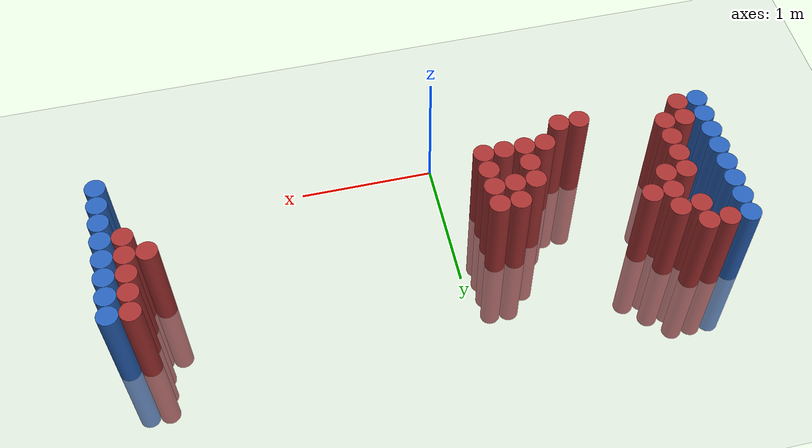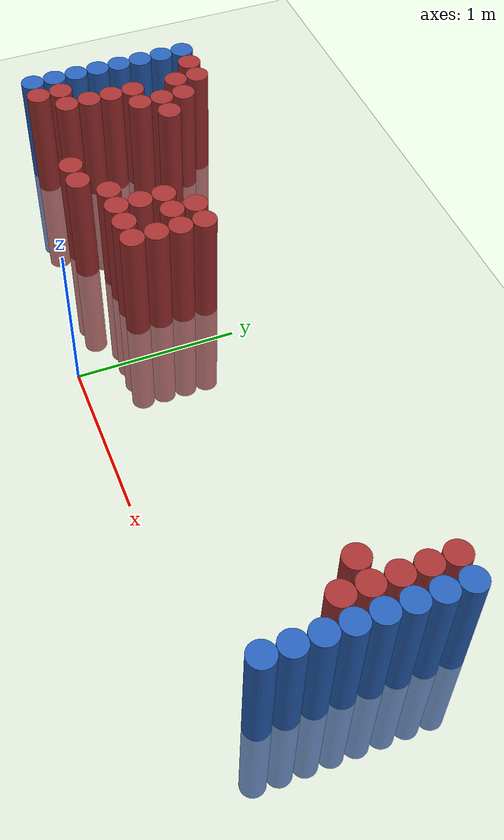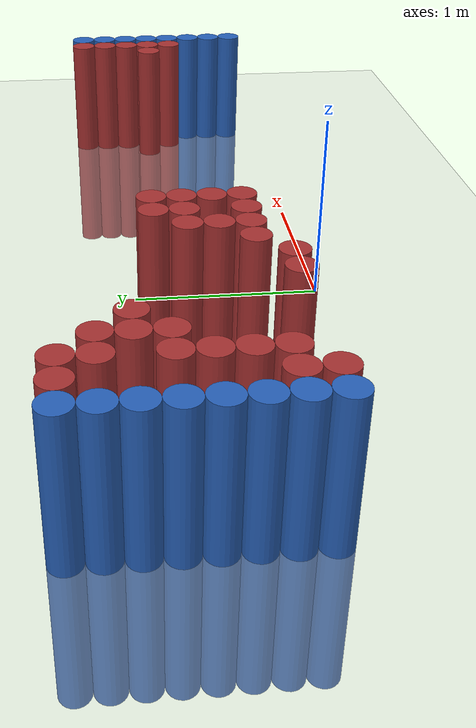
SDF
<sdf version="1.6">
 <world name="default">
  <model name="ground_plane">
   <static>1</static>
   <link name="link">
    <collision name="collision">
     <geometry><plane><normal>0 0 1</normal><size>100 100</size></plane></geometry>
     <surface><friction><ode><mu>100</mu><mu2>50</mu2></ode></friction></surface>
    </collision>
    <visual name="visual">
     <cast_shadows>0</cast_shadows>
     <geometry><plane><normal>0 0 1</normal><size>100 100</size></plane></geometry>
     <material>
      <script><uri>file://media/materials/scripts/gazebo.material</uri><name>Gazebo/Grey</name></script>
     </material>
    </visual>
   </link>
  </model>
  <model name="unit_cylinder_97">
   <static>1</static>
   <pose>-1.925000 0.325000 0.000000 0.000000 0.000000 0.000000</pose>
   <link name="link">
    <inertial>
     <mass>1</mass>
     <inertia><ixx>0.145833</ixx><ixy>0</ixy><ixz>0</ixz><iyy>0.145833</iyy><iyz>0</iyz><izz>0.125</izz></inertia>
    </inertial>
    <collision name="collision">
     <geometry><cylinder><radius>0.075000</radius><length>1.5</length></cylinder></geometry>
    </collision>
    <visual name="visual">
     <geometry><cylinder><radius>0.075000</radius><length>1.5</length></cylinder></geometry>
     <material>
      <ambient>0.152000 0.379000 0.720000 1</ambient>
      <diffuse>0.152000 0.379000 0.720000 1</diffuse>
     </material>
     <material>
      <script><name>Gazebo/Grey</name><uri>file://media/materials/scripts/gazebo.material</uri></script>
     </material>
    </visual>
   </link>
  </model>
  <model name="unit_cylinder_98">
   <static>1</static>
   <pose>-1.925000 0.475000 0.000000 0.000000 0.000000 0.000000</pose>
   <link name="link">
    <inertial>
     <mass>1</mass>
     <inertia><ixx>0.145833</ixx><ixy>0</ixy><ixz>0</ixz><iyy>0.145833</iyy><iyz>0</iyz><izz>0.125</izz></inertia>
    </inertial>
    <collision name="collision">
     <geometry><cylinder><radius>0.075000</radius><length>1.5</length></cylinder></geometry>
    </collision>
    <visual name="visual">
     <geometry><cylinder><radius>0.075000</radius><length>1.5</length></cylinder></geometry>
     <material>
      <ambient>0.152000 0.379000 0.720000 1</ambient>
      <diffuse>0.152000 0.379000 0.720000 1</diffuse>
     </material>
     <material>
      <script><name>Gazebo/Grey</name><uri>file://media/materials/scripts/gazebo.material</uri></script>
     </material>
    </visual>
   </link>
  </model>
  <model name="unit_cylinder_99">
   <static>1</static>
   <pose>-1.925000 0.625000 0.000000 0.000000 0.000000 0.000000</pose>
   <link name="link">
    <inertial>
     <mass>1</mass>
     <inertia><ixx>0.145833</ixx><ixy>0</ixy><ixz>0</ixz><iyy>0.145833</iyy><iyz>0</iyz><izz>0.125</izz></inertia>
    </inertial>
    <collision name="collision">
     <geometry><cylinder><radius>0.075000</radius><length>1.5</length></cylinder></geometry>
    </collision>
    <visual name="visual">
     <geometry><cylinder><radius>0.075000</radius><length>1.5</length></cylinder></geometry>
     <material>
      <ambient>0.152000 0.379000 0.720000 1</ambient>
      <diffuse>0.152000 0.379000 0.720000 1</diffuse>
     </material>
     <material>
      <script><name>Gazebo/Grey</name><uri>file://media/materials/scripts/gazebo.material</uri></script>
     </material>
    </visual>
   </link>
  </model>
  <model name="unit_cylinder_100">
   <static>1</static>
   <pose>-1.925000 0.775000 0.000000 0.000000 0.000000 0.000000</pose>
   <link name="link">
    <inertial>
     <mass>1</mass>
     <inertia><ixx>0.145833</ixx><ixy>0</ixy><ixz>0</ixz><iyy>0.145833</iyy><iyz>0</iyz><izz>0.125</izz></inertia>
    </inertial>
    <collision name="collision">
     <geometry><cylinder><radius>0.075000</radius><length>1.5</length></cylinder></geometry>
    </collision>
    <visual name="visual">
     <geometry><cylinder><radius>0.075000</radius><length>1.5</length></cylinder></geometry>
     <material>
      <ambient>0.152000 0.379000 0.720000 1</ambient>
      <diffuse>0.152000 0.379000 0.720000 1</diffuse>
     </material>
     <material>
      <script><name>Gazebo/Grey</name><uri>file://media/materials/scripts/gazebo.material</uri></script>
     </material>
    </visual>
   </link>
  </model>
  <model name="unit_cylinder_101">
   <static>1</static>
   <pose>-1.925000 0.925000 0.000000 0.000000 0.000000 0.000000</pose>
   <link name="link">
    <inertial>
     <mass>1</mass>
     <inertia><ixx>0.145833</ixx><ixy>0</ixy><ixz>0</ixz><iyy>0.145833</iyy><iyz>0</iyz><izz>0.125</izz></inertia>
    </inertial>
    <collision name="collision">
     <geometry><cylinder><radius>0.075000</radius><length>1.5</length></cylinder></geometry>
    </collision>
    <visual name="visual">
     <geometry><cylinder><radius>0.075000</radius><length>1.5</length></cylinder></geometry>
     <material>
      <ambient>0.152000 0.379000 0.720000 1</ambient>
      <diffuse>0.152000 0.379000 0.720000 1</diffuse>
     </material>
     <material>
      <script><name>Gazebo/Grey</name><uri>file://media/materials/scripts/gazebo.material</uri></script>
     </material>
    </visual>
   </link>
  </model>
  <model name="unit_cylinder_102">
   <static>1</static>
   <pose>-1.925000 1.075000 0.000000 0.000000 0.000000 0.000000</pose>
   <link name="link">
    <inertial>
     <mass>1</mass>
     <inertia><ixx>0.145833</ixx><ixy>0</ixy><ixz>0</ixz><iyy>0.145833</iyy><iyz>0</iyz><izz>0.125</izz></inertia>
    </inertial>
    <collision name="collision">
     <geometry><cylinder><radius>0.075000</radius><length>1.5</length></cylinder></geometry>
    </collision>
    <visual name="visual">
     <geometry><cylinder><radius>0.075000</radius><length>1.5</length></cylinder></geometry>
     <material>
      <ambient>0.152000 0.379000 0.720000 1</ambient>
      <diffuse>0.152000 0.379000 0.720000 1</diffuse>
     </material>
     <material>
      <script><name>Gazebo/Grey</name><uri>file://media/materials/scripts/gazebo.material</uri></script>
     </material>
    </visual>
   </link>
  </model>
  <model name="unit_cylinder_103">
   <static>1</static>
   <pose>-1.925000 1.225000 0.000000 0.000000 0.000000 0.000000</pose>
   <link name="link">
    <inertial>
     <mass>1</mass>
     <inertia><ixx>0.145833</ixx><ixy>0</ixy><ixz>0</ixz><iyy>0.145833</iyy><iyz>0</iyz><izz>0.125</izz></inertia>
    </inertial>
    <collision name="collision">
     <geometry><cylinder><radius>0.075000</radius><length>1.5</length></cylinder></geometry>
    </collision>
    <visual name="visual">
     <geometry><cylinder><radius>0.075000</radius><length>1.5</length></cylinder></geometry>
     <material>
      <ambient>0.152000 0.379000 0.720000 1</ambient>
      <diffuse>0.152000 0.379000 0.720000 1</diffuse>
     </material>
     <material>
      <script><name>Gazebo/Grey</name><uri>file://media/materials/scripts/gazebo.material</uri></script>
     </material>
    </visual>
   </link>
  </model>
  <model name="unit_cylinder_104">
   <static>1</static>
   <pose>-1.925000 1.375000 0.000000 0.000000 0.000000 0.000000</pose>
   <link name="link">
    <inertial>
     <mass>1</mass>
     <inertia><ixx>0.145833</ixx><ixy>0</ixy><ixz>0</ixz><iyy>0.145833</iyy><iyz>0</iyz><izz>0.125</izz></inertia>
    </inertial>
    <collision name="collision">
     <geometry><cylinder><radius>0.075000</radius><length>1.5</length></cylinder></geometry>
    </collision>
    <visual name="visual">
     <geometry><cylinder><radius>0.075000</radius><length>1.5</length></cylinder></geometry>
     <material>
      <ambient>0.152000 0.379000 0.720000 1</ambient>
      <diffuse>0.152000 0.379000 0.720000 1</diffuse>
     </material>
     <material>
      <script><name>Gazebo/Grey</name><uri>file://media/materials/scripts/gazebo.material</uri></script>
     </material>
    </visual>
   </link>
  </model>
  <model name="unit_cylinder_126">
   <static>1</static>
   <pose>-1.775000 0.325000 0.000000 0.000000 0.000000 0.000000</pose>
   <link name="link">
    <inertial>
     <mass>1</mass>
     <inertia><ixx>0.145833</ixx><ixy>0</ixy><ixz>0</ixz><iyy>0.145833</iyy><iyz>0</iyz><izz>0.125</izz></inertia>
    </inertial>
    <collision name="collision">
     <geometry><cylinder><radius>0.075000</radius><length>1.5</length></cylinder></geometry>
    </collision>
    <visual name="visual">
     <geometry><cylinder><radius>0.075000</radius><length>1.5</length></cylinder></geometry>
     <material>
      <ambient>0.648000 0.192000 0.192000 1</ambient>
      <diffuse>0.648000 0.192000 0.192000 1</diffuse>
     </material>
     <material>
      <script><name>Gazebo/Grey</name><uri>file://media/materials/scripts/gazebo.material</uri></script>
     </material>
    </visual>
   </link>
  </model>
  <model name="unit_cylinder_127">
   <static>1</static>
   <pose>-1.775000 0.475000 0.000000 0.000000 0.000000 0.000000</pose>
   <link name="link">
    <inertial>
     <mass>1</mass>
     <inertia><ixx>0.145833</ixx><ixy>0</ixy><ixz>0</ixz><iyy>0.145833</iyy><iyz>0</iyz><izz>0.125</izz></inertia>
    </inertial>
    <collision name="collision">
     <geometry><cylinder><radius>0.075000</radius><length>1.5</length></cylinder></geometry>
    </collision>
    <visual name="visual">
     <geometry><cylinder><radius>0.075000</radius><length>1.5</length></cylinder></geometry>
     <material>
      <ambient>0.648000 0.192000 0.192000 1</ambient>
      <diffuse>0.648000 0.192000 0.192000 1</diffuse>
     </material>
     <material>
      <script><name>Gazebo/Grey</name><uri>file://media/materials/scripts/gazebo.material</uri></script>
     </material>
    </visual>
   </link>
  </model>
  <model name="unit_cylinder_128">
   <static>1</static>
   <pose>-1.775000 1.375000 0.000000 0.000000 0.000000 0.000000</pose>
   <link name="link">
    <inertial>
     <mass>1</mass>
     <inertia><ixx>0.145833</ixx><ixy>0</ixy><ixz>0</ixz><iyy>0.145833</iyy><iyz>0</iyz><izz>0.125</izz></inertia>
    </inertial>
    <collision name="collision">
     <geometry><cylinder><radius>0.075000</radius><length>1.5</length></cylinder></geometry>
    </collision>
    <visual name="visual">
     <geometry><cylinder><radius>0.075000</radius><length>1.5</length></cylinder></geometry>
     <material>
      <ambient>0.648000 0.192000 0.192000 1</ambient>
      <diffuse>0.648000 0.192000 0.192000 1</diffuse>
     </material>
     <material>
      <script><name>Gazebo/Grey</name><uri>file://media/materials/scripts/gazebo.material</uri></script>
     </material>
    </visual>
   </link>
  </model>
  <model name="unit_cylinder_141">
   <static>1</static>
   <pose>-1.625000 0.475000 0.000000 0.000000 0.000000 0.000000</pose>
   <link name="link">
    <inertial>
     <mass>1</mass>
     <inertia><ixx>0.145833</ixx><ixy>0</ixy><ixz>0</ixz><iyy>0.145833</iyy><iyz>0</iyz><izz>0.125</izz></inertia>
    </inertial>
    <collision name="collision">
     <geometry><cylinder><radius>0.075000</radius><length>1.5</length></cylinder></geometry>
    </collision>
    <visual name="visual">
     <geometry><cylinder><radius>0.075000</radius><length>1.5</length></cylinder></geometry>
     <material>
      <ambient>0.648000 0.192000 0.192000 1</ambient>
      <diffuse>0.648000 0.192000 0.192000 1</diffuse>
     </material>
     <material>
      <script><name>Gazebo/Grey</name><uri>file://media/materials/scripts/gazebo.material</uri></script>
     </material>
    </visual>
   </link>
  </model>
  <model name="unit_cylinder_142">
   <static>1</static>
   <pose>-1.625000 0.625000 0.000000 0.000000 0.000000 0.000000</pose>
   <link name="link">
    <inertial>
     <mass>1</mass>
     <inertia><ixx>0.145833</ixx><ixy>0</ixy><ixz>0</ixz><iyy>0.145833</iyy><iyz>0</iyz><izz>0.125</izz></inertia>
    </inertial>
    <collision name="collision">
     <geometry><cylinder><radius>0.075000</radius><length>1.5</length></cylinder></geometry>
    </collision>
    <visual name="visual">
     <geometry><cylinder><radius>0.075000</radius><length>1.5</length></cylinder></geometry>
     <material>
      <ambient>0.648000 0.192000 0.192000 1</ambient>
      <diffuse>0.648000 0.192000 0.192000 1</diffuse>
     </material>
     <material>
      <script><name>Gazebo/Grey</name><uri>file://media/materials/scripts/gazebo.material</uri></script>
     </material>
    </visual>
   </link>
  </model>
  <model name="unit_cylinder_143">
   <static>1</static>
   <pose>-1.625000 0.775000 0.000000 0.000000 0.000000 0.000000</pose>
   <link name="link">
    <inertial>
     <mass>1</mass>
     <inertia><ixx>0.145833</ixx><ixy>0</ixy><ixz>0</ixz><iyy>0.145833</iyy><iyz>0</iyz><izz>0.125</izz></inertia>
    </inertial>
    <collision name="collision">
     <geometry><cylinder><radius>0.075000</radius><length>1.5</length></cylinder></geometry>
    </collision>
    <visual name="visual">
     <geometry><cylinder><radius>0.075000</radius><length>1.5</length></cylinder></geometry>
     <material>
      <ambient>0.648000 0.192000 0.192000 1</ambient>
      <diffuse>0.648000 0.192000 0.192000 1</diffuse>
     </material>
     <material>
      <script><name>Gazebo/Grey</name><uri>file://media/materials/scripts/gazebo.material</uri></script>
     </material>
    </visual>
   </link>
  </model>
  <model name="unit_cylinder_144">
   <static>1</static>
   <pose>-1.625000 0.925000 0.000000 0.000000 0.000000 0.000000</pose>
   <link name="link">
    <inertial>
     <mass>1</mass>
     <inertia><ixx>0.145833</ixx><ixy>0</ixy><ixz>0</ixz><iyy>0.145833</iyy><iyz>0</iyz><izz>0.125</izz></inertia>
    </inertial>
    <collision name="collision">
     <geometry><cylinder><radius>0.075000</radius><length>1.5</length></cylinder></geometry>
    </collision>
    <visual name="visual">
     <geometry><cylinder><radius>0.075000</radius><length>1.5</length></cylinder></geometry>
     <material>
      <ambient>0.648000 0.192000 0.192000 1</ambient>
      <diffuse>0.648000 0.192000 0.192000 1</diffuse>
     </material>
     <material>
      <script><name>Gazebo/Grey</name><uri>file://media/materials/scripts/gazebo.material</uri></script>
     </material>
    </visual>
   </link>
  </model>
  <model name="unit_cylinder_145">
   <static>1</static>
   <pose>-1.625000 1.225000 0.000000 0.000000 0.000000 0.000000</pose>
   <link name="link">
    <inertial>
     <mass>1</mass>
     <inertia><ixx>0.145833</ixx><ixy>0</ixy><ixz>0</ixz><iyy>0.145833</iyy><iyz>0</iyz><izz>0.125</izz></inertia>
    </inertial>
    <collision name="collision">
     <geometry><cylinder><radius>0.075000</radius><length>1.5</length></cylinder></geometry>
    </collision>
    <visual name="visual">
     <geometry><cylinder><radius>0.075000</radius><length>1.5</length></cylinder></geometry>
     <material>
      <ambient>0.648000 0.192000 0.192000 1</ambient>
      <diffuse>0.648000 0.192000 0.192000 1</diffuse>
     </material>
     <material>
      <script><name>Gazebo/Grey</name><uri>file://media/materials/scripts/gazebo.material</uri></script>
     </material>
    </visual>
   </link>
  </model>
  <model name="unit_cylinder_146">
   <static>1</static>
   <pose>-1.625000 1.375000 0.000000 0.000000 0.000000 0.000000</pose>
   <link name="link">
    <inertial>
     <mass>1</mass>
     <inertia><ixx>0.145833</ixx><ixy>0</ixy><ixz>0</ixz><iyy>0.145833</iyy><iyz>0</iyz><izz>0.125</izz></inertia>
    </inertial>
    <collision name="collision">
     <geometry><cylinder><radius>0.075000</radius><length>1.5</length></cylinder></geometry>
    </collision>
    <visual name="visual">
     <geometry><cylinder><radius>0.075000</radius><length>1.5</length></cylinder></geometry>
     <material>
      <ambient>0.648000 0.192000 0.192000 1</ambient>
      <diffuse>0.648000 0.192000 0.192000 1</diffuse>
     </material>
     <material>
      <script><name>Gazebo/Grey</name><uri>file://media/materials/scripts/gazebo.material</uri></script>
     </material>
    </visual>
   </link>
  </model>
  <model name="unit_cylinder_147">
   <static>1</static>
   <pose>-1.475000 0.925000 0.000000 0.000000 0.000000 0.000000</pose>
   <link name="link">
    <inertial>
     <mass>1</mass>
     <inertia><ixx>0.145833</ixx><ixy>0</ixy><ixz>0</ixz><iyy>0.145833</iyy><iyz>0</iyz><izz>0.125</izz></inertia>
    </inertial>
    <collision name="collision">
     <geometry><cylinder><radius>0.075000</radius><length>1.5</length></cylinder></geometry>
    </collision>
    <visual name="visual">
     <geometry><cylinder><radius>0.075000</radius><length>1.5</length></cylinder></geometry>
     <material>
      <ambient>0.648000 0.192000 0.192000 1</ambient>
      <diffuse>0.648000 0.192000 0.192000 1</diffuse>
     </material>
     <material>
      <script><name>Gazebo/Grey</name><uri>file://media/materials/scripts/gazebo.material</uri></script>
     </material>
    </visual>
   </link>
  </model>
  <model name="unit_cylinder_148">
   <static>1</static>
   <pose>-1.475000 1.075000 0.000000 0.000000 0.000000 0.000000</pose>
   <link name="link">
    <inertial>
     <mass>1</mass>
     <inertia><ixx>0.145833</ixx><ixy>0</ixy><ixz>0</ixz><iyy>0.145833</iyy><iyz>0</iyz><izz>0.125</izz></inertia>
    </inertial>
    <collision name="collision">
     <geometry><cylinder><radius>0.075000</radius><length>1.5</length></cylinder></geometry>
    </collision>
    <visual name="visual">
     <geometry><cylinder><radius>0.075000</radius><length>1.5</length></cylinder></geometry>
     <material>
      <ambient>0.648000 0.192000 0.192000 1</ambient>
      <diffuse>0.648000 0.192000 0.192000 1</diffuse>
     </material>
     <material>
      <script><name>Gazebo/Grey</name><uri>file://media/materials/scripts/gazebo.material</uri></script>
     </material>
    </visual>
   </link>
  </model>
  <model name="unit_cylinder_149">
   <static>1</static>
   <pose>-1.475000 1.225000 0.000000 0.000000 0.000000 0.000000</pose>
   <link name="link">
    <inertial>
     <mass>1</mass>
     <inertia><ixx>0.145833</ixx><ixy>0</ixy><ixz>0</ixz><iyy>0.145833</iyy><iyz>0</iyz><izz>0.125</izz></inertia>
    </inertial>
    <collision name="collision">
     <geometry><cylinder><radius>0.075000</radius><length>1.5</length></cylinder></geometry>
    </collision>
    <visual name="visual">
     <geometry><cylinder><radius>0.075000</radius><length>1.5</length></cylinder></geometry>
     <material>
      <ambient>0.648000 0.192000 0.192000 1</ambient>
      <diffuse>0.648000 0.192000 0.192000 1</diffuse>
     </material>
     <material>
      <script><name>Gazebo/Grey</name><uri>file://media/materials/scripts/gazebo.material</uri></script>
     </material>
    </visual>
   </link>
  </model>
  <model name="unit_cylinder_151">
   <static>1</static>
   <pose>-1.325000 1.075000 0.000000 0.000000 0.000000 0.000000</pose>
   <link name="link">
    <inertial>
     <mass>1</mass>
     <inertia><ixx>0.145833</ixx><ixy>0</ixy><ixz>0</ixz><iyy>0.145833</iyy><iyz>0</iyz><izz>0.125</izz></inertia>
    </inertial>
    <collision name="collision">
     <geometry><cylinder><radius>0.075000</radius><length>1.5</length></cylinder></geometry>
    </collision>
    <visual name="visual">
     <geometry><cylinder><radius>0.075000</radius><length>1.5</length></cylinder></geometry>
     <material>
      <ambient>0.648000 0.192000 0.192000 1</ambient>
      <diffuse>0.648000 0.192000 0.192000 1</diffuse>
     </material>
     <material>
      <script><name>Gazebo/Grey</name><uri>file://media/materials/scripts/gazebo.material</uri></script>
     </material>
    </visual>
   </link>
  </model>
  <model name="unit_cylinder_164">
   <static>1</static>
   <pose>-1.025000 0.325000 0.000000 0.000000 0.000000 0.000000</pose>
   <link name="link">
    <inertial>
     <mass>1</mass>
     <inertia><ixx>0.145833</ixx><ixy>0</ixy><ixz>0</ixz><iyy>0.145833</iyy><iyz>0</iyz><izz>0.125</izz></inertia>
    </inertial>
    <collision name="collision">
     <geometry><cylinder><radius>0.075000</radius><length>1.5</length></cylinder></geometry>
    </collision>
    <visual name="visual">
     <geometry><cylinder><radius>0.075000</radius><length>1.5</length></cylinder></geometry>
     <material>
      <ambient>0.648000 0.192000 0.192000 1</ambient>
      <diffuse>0.648000 0.192000 0.192000 1</diffuse>
     </material>
     <material>
      <script><name>Gazebo/Grey</name><uri>file://media/materials/scripts/gazebo.material</uri></script>
     </material>
    </visual>
   </link>
  </model>
  <model name="unit_cylinder_171">
   <static>1</static>
   <pose>-0.875000 0.325000 0.000000 0.000000 0.000000 0.000000</pose>
   <link name="link">
    <inertial>
     <mass>1</mass>
     <inertia><ixx>0.145833</ixx><ixy>0</ixy><ixz>0</ixz><iyy>0.145833</iyy><iyz>0</iyz><izz>0.125</izz></inertia>
    </inertial>
    <collision name="collision">
     <geometry><cylinder><radius>0.075000</radius><length>1.5</length></cylinder></geometry>
    </collision>
    <visual name="visual">
     <geometry><cylinder><radius>0.075000</radius><length>1.5</length></cylinder></geometry>
     <material>
      <ambient>0.648000 0.192000 0.192000 1</ambient>
      <diffuse>0.648000 0.192000 0.192000 1</diffuse>
     </material>
     <material>
      <script><name>Gazebo/Grey</name><uri>file://media/materials/scripts/gazebo.material</uri></script>
     </material>
    </visual>
   </link>
  </model>
  <model name="unit_cylinder_176">
   <static>1</static>
   <pose>-0.725000 0.475000 0.000000 0.000000 0.000000 0.000000</pose>
   <link name="link">
    <inertial>
     <mass>1</mass>
     <inertia><ixx>0.145833</ixx><ixy>0</ixy><ixz>0</ixz><iyy>0.145833</iyy><iyz>0</iyz><izz>0.125</izz></inertia>
    </inertial>
    <collision name="collision">
     <geometry><cylinder><radius>0.075000</radius><length>1.5</length></cylinder></geometry>
    </collision>
    <visual name="visual">
     <geometry><cylinder><radius>0.075000</radius><length>1.5</length></cylinder></geometry>
     <material>
      <ambient>0.648000 0.192000 0.192000 1</ambient>
      <diffuse>0.648000 0.192000 0.192000 1</diffuse>
     </material>
     <material>
      <script><name>Gazebo/Grey</name><uri>file://media/materials/scripts/gazebo.material</uri></script>
     </material>
    </visual>
   </link>
  </model>
  <model name="unit_cylinder_180">
   <static>1</static>
   <pose>-0.575000 0.475000 0.000000 0.000000 0.000000 0.000000</pose>
   <link name="link">
    <inertial>
     <mass>1</mass>
     <inertia><ixx>0.145833</ixx><ixy>0</ixy><ixz>0</ixz><iyy>0.145833</iyy><iyz>0</iyz><izz>0.125</izz></inertia>
    </inertial>
    <collision name="collision">
     <geometry><cylinder><radius>0.075000</radius><length>1.5</length></cylinder></geometry>
    </collision>
    <visual name="visual">
     <geometry><cylinder><radius>0.075000</radius><length>1.5</length></cylinder></geometry>
     <material>
      <ambient>0.648000 0.192000 0.192000 1</ambient>
      <diffuse>0.648000 0.192000 0.192000 1</diffuse>
     </material>
     <material>
      <script><name>Gazebo/Grey</name><uri>file://media/materials/scripts/gazebo.material</uri></script>
     </material>
    </visual>
   </link>
  </model>
  <model name="unit_cylinder_181">
   <static>1</static>
   <pose>-0.575000 0.625000 0.000000 0.000000 0.000000 0.000000</pose>
   <link name="link">
    <inertial>
     <mass>1</mass>
     <inertia><ixx>0.145833</ixx><ixy>0</ixy><ixz>0</ixz><iyy>0.145833</iyy><iyz>0</iyz><izz>0.125</izz></inertia>
    </inertial>
    <collision name="collision">
     <geometry><cylinder><radius>0.075000</radius><length>1.5</length></cylinder></geometry>
    </collision>
    <visual name="visual">
     <geometry><cylinder><radius>0.075000</radius><length>1.5</length></cylinder></geometry>
     <material>
      <ambient>0.648000 0.192000 0.192000 1</ambient>
      <diffuse>0.648000 0.192000 0.192000 1</diffuse>
     </material>
     <material>
      <script><name>Gazebo/Grey</name><uri>file://media/materials/scripts/gazebo.material</uri></script>
     </material>
    </visual>
   </link>
  </model>
  <model name="unit_cylinder_182">
   <static>1</static>
   <pose>-0.575000 0.775000 0.000000 0.000000 0.000000 0.000000</pose>
   <link name="link">
    <inertial>
     <mass>1</mass>
     <inertia><ixx>0.145833</ixx><ixy>0</ixy><ixz>0</ixz><iyy>0.145833</iyy><iyz>0</iyz><izz>0.125</izz></inertia>
    </inertial>
    <collision name="collision">
     <geometry><cylinder><radius>0.075000</radius><length>1.5</length></cylinder></geometry>
    </collision>
    <visual name="visual">
     <geometry><cylinder><radius>0.075000</radius><length>1.5</length></cylinder></geometry>
     <material>
      <ambient>0.648000 0.192000 0.192000 1</ambient>
      <diffuse>0.648000 0.192000 0.192000 1</diffuse>
     </material>
     <material>
      <script><name>Gazebo/Grey</name><uri>file://media/materials/scripts/gazebo.material</uri></script>
     </material>
    </visual>
   </link>
  </model>
  <model name="unit_cylinder_186">
   <static>1</static>
   <pose>-0.425000 0.475000 0.000000 0.000000 0.000000 0.000000</pose>
   <link name="link">
    <inertial>
     <mass>1</mass>
     <inertia><ixx>0.145833</ixx><ixy>0</ixy><ixz>0</ixz><iyy>0.145833</iyy><iyz>0</iyz><izz>0.125</izz></inertia>
    </inertial>
    <collision name="collision">
     <geometry><cylinder><radius>0.075000</radius><length>1.5</length></cylinder></geometry>
    </collision>
    <visual name="visual">
     <geometry><cylinder><radius>0.075000</radius><length>1.5</length></cylinder></geometry>
     <material>
      <ambient>0.648000 0.192000 0.192000 1</ambient>
      <diffuse>0.648000 0.192000 0.192000 1</diffuse>
     </material>
     <material>
      <script><name>Gazebo/Grey</name><uri>file://media/materials/scripts/gazebo.material</uri></script>
     </material>
    </visual>
   </link>
  </model>
  <model name="unit_cylinder_187">
   <static>1</static>
   <pose>-0.425000 0.775000 0.000000 0.000000 0.000000 0.000000</pose>
   <link name="link">
    <inertial>
     <mass>1</mass>
     <inertia><ixx>0.145833</ixx><ixy>0</ixy><ixz>0</ixz><iyy>0.145833</iyy><iyz>0</iyz><izz>0.125</izz></inertia>
    </inertial>
    <collision name="collision">
     <geometry><cylinder><radius>0.075000</radius><length>1.5</length></cylinder></geometry>
    </collision>
    <visual name="visual">
     <geometry><cylinder><radius>0.075000</radius><length>1.5</length></cylinder></geometry>
     <material>
      <ambient>0.648000 0.192000 0.192000 1</ambient>
      <diffuse>0.648000 0.192000 0.192000 1</diffuse>
     </material>
     <material>
      <script><name>Gazebo/Grey</name><uri>file://media/materials/scripts/gazebo.material</uri></script>
     </material>
    </visual>
   </link>
  </model>
  <model name="unit_cylinder_188">
   <static>1</static>
   <pose>-0.425000 0.925000 0.000000 0.000000 0.000000 0.000000</pose>
   <link name="link">
    <inertial>
     <mass>1</mass>
     <inertia><ixx>0.145833</ixx><ixy>0</ixy><ixz>0</ixz><iyy>0.145833</iyy><iyz>0</iyz><izz>0.125</izz></inertia>
    </inertial>
    <collision name="collision">
     <geometry><cylinder><radius>0.075000</radius><length>1.5</length></cylinder></geometry>
    </collision>
    <visual name="visual">
     <geometry><cylinder><radius>0.075000</radius><length>1.5</length></cylinder></geometry>
     <material>
      <ambient>0.648000 0.192000 0.192000 1</ambient>
      <diffuse>0.648000 0.192000 0.192000 1</diffuse>
     </material>
     <material>
      <script><name>Gazebo/Grey</name><uri>file://media/materials/scripts/gazebo.material</uri></script>
     </material>
    </visual>
   </link>
  </model>
  <model name="unit_cylinder_191">
   <static>1</static>
   <pose>-0.275000 0.475000 0.000000 0.000000 0.000000 0.000000</pose>
   <link name="link">
    <inertial>
     <mass>1</mass>
     <inertia><ixx>0.145833</ixx><ixy>0</ixy><ixz>0</ixz><iyy>0.145833</iyy><iyz>0</iyz><izz>0.125</izz></inertia>
    </inertial>
    <collision name="collision">
     <geometry><cylinder><radius>0.075000</radius><length>1.5</length></cylinder></geometry>
    </collision>
    <visual name="visual">
     <geometry><cylinder><radius>0.075000</radius><length>1.5</length></cylinder></geometry>
     <material>
      <ambient>0.648000 0.192000 0.192000 1</ambient>
      <diffuse>0.648000 0.192000 0.192000 1</diffuse>
     </material>
     <material>
      <script><name>Gazebo/Grey</name><uri>file://media/materials/scripts/gazebo.material</uri></script>
     </material>
    </visual>
   </link>
  </model>
  <model name="unit_cylinder_192">
   <static>1</static>
   <pose>-0.275000 0.625000 0.000000 0.000000 0.000000 0.000000</pose>
   <link name="link">
    <inertial>
     <mass>1</mass>
     <inertia><ixx>0.145833</ixx><ixy>0</ixy><ixz>0</ixz><iyy>0.145833</iyy><iyz>0</iyz><izz>0.125</izz></inertia>
    </inertial>
    <collision name="collision">
     <geometry><cylinder><radius>0.075000</radius><length>1.5</length></cylinder></geometry>
    </collision>
    <visual name="visual">
     <geometry><cylinder><radius>0.075000</radius><length>1.5</length></cylinder></geometry>
     <material>
      <ambient>0.648000 0.192000 0.192000 1</ambient>
      <diffuse>0.648000 0.192000 0.192000 1</diffuse>
     </material>
     <material>
      <script><name>Gazebo/Grey</name><uri>file://media/materials/scripts/gazebo.material</uri></script>
     </material>
    </visual>
   </link>
  </model>
  <model name="unit_cylinder_193">
   <static>1</static>
   <pose>-0.275000 0.775000 0.000000 0.000000 0.000000 0.000000</pose>
   <link name="link">
    <inertial>
     <mass>1</mass>
     <inertia><ixx>0.145833</ixx><ixy>0</ixy><ixz>0</ixz><iyy>0.145833</iyy><iyz>0</iyz><izz>0.125</izz></inertia>
    </inertial>
    <collision name="collision">
     <geometry><cylinder><radius>0.075000</radius><length>1.5</length></cylinder></geometry>
    </collision>
    <visual name="visual">
     <geometry><cylinder><radius>0.075000</radius><length>1.5</length></cylinder></geometry>
     <material>
      <ambient>0.648000 0.192000 0.192000 1</ambient>
      <diffuse>0.648000 0.192000 0.192000 1</diffuse>
     </material>
     <material>
      <script><name>Gazebo/Grey</name><uri>file://media/materials/scripts/gazebo.material</uri></script>
     </material>
    </visual>
   </link>
  </model>
  <model name="unit_cylinder_194">
   <static>1</static>
   <pose>-0.275000 0.925000 0.000000 0.000000 0.000000 0.000000</pose>
   <link name="link">
    <inertial>
     <mass>1</mass>
     <inertia><ixx>0.145833</ixx><ixy>0</ixy><ixz>0</ixz><iyy>0.145833</iyy><iyz>0</iyz><izz>0.125</izz></inertia>
    </inertial>
    <collision name="collision">
     <geometry><cylinder><radius>0.075000</radius><length>1.5</length></cylinder></geometry>
    </collision>
    <visual name="visual">
     <geometry><cylinder><radius>0.075000</radius><length>1.5</length></cylinder></geometry>
     <material>
      <ambient>0.648000 0.192000 0.192000 1</ambient>
      <diffuse>0.648000 0.192000 0.192000 1</diffuse>
     </material>
     <material>
      <script><name>Gazebo/Grey</name><uri>file://media/materials/scripts/gazebo.material</uri></script>
     </material>
    </visual>
   </link>
  </model>
  <model name="unit_cylinder_236">
   <static>1</static>
   <pose>2.125000 0.775000 0.000000 0.000000 0.000000 0.000000</pose>
   <link name="link">
    <inertial>
     <mass>1</mass>
     <inertia><ixx>0.145833</ixx><ixy>0</ixy><ixz>0</ixz><iyy>0.145833</iyy><iyz>0</iyz><izz>0.125</izz></inertia>
    </inertial>
    <collision name="collision">
     <geometry><cylinder><radius>0.075000</radius><length>1.5</length></cylinder></geometry>
    </collision>
    <visual name="visual">
     <geometry><cylinder><radius>0.075000</radius><length>1.5</length></cylinder></geometry>
     <material>
      <ambient>0.648000 0.192000 0.192000 1</ambient>
      <diffuse>0.648000 0.192000 0.192000 1</diffuse>
     </material>
     <material>
      <script><name>Gazebo/Grey</name><uri>file://media/materials/scripts/gazebo.material</uri></script>
     </material>
    </visual>
   </link>
  </model>
  <model name="unit_cylinder_242">
   <static>1</static>
   <pose>2.275000 0.625000 0.000000 0.000000 0.000000 0.000000</pose>
   <link name="link">
    <inertial>
     <mass>1</mass>
     <inertia><ixx>0.145833</ixx><ixy>0</ixy><ixz>0</ixz><iyy>0.145833</iyy><iyz>0</iyz><izz>0.125</izz></inertia>
    </inertial>
    <collision name="collision">
     <geometry><cylinder><radius>0.075000</radius><length>1.5</length></cylinder></geometry>
    </collision>
    <visual name="visual">
     <geometry><cylinder><radius>0.075000</radius><length>1.5</length></cylinder></geometry>
     <material>
      <ambient>0.648000 0.192000 0.192000 1</ambient>
      <diffuse>0.648000 0.192000 0.192000 1</diffuse>
     </material>
     <material>
      <script><name>Gazebo/Grey</name><uri>file://media/materials/scripts/gazebo.material</uri></script>
     </material>
    </visual>
   </link>
  </model>
  <model name="unit_cylinder_243">
   <static>1</static>
   <pose>2.275000 0.775000 0.000000 0.000000 0.000000 0.000000</pose>
   <link name="link">
    <inertial>
     <mass>1</mass>
     <inertia><ixx>0.145833</ixx><ixy>0</ixy><ixz>0</ixz><iyy>0.145833</iyy><iyz>0</iyz><izz>0.125</izz></inertia>
    </inertial>
    <collision name="collision">
     <geometry><cylinder><radius>0.075000</radius><length>1.5</length></cylinder></geometry>
    </collision>
    <visual name="visual">
     <geometry><cylinder><radius>0.075000</radius><length>1.5</length></cylinder></geometry>
     <material>
      <ambient>0.648000 0.192000 0.192000 1</ambient>
      <diffuse>0.648000 0.192000 0.192000 1</diffuse>
     </material>
     <material>
      <script><name>Gazebo/Grey</name><uri>file://media/materials/scripts/gazebo.material</uri></script>
     </material>
    </visual>
   </link>
  </model>
  <model name="unit_cylinder_244">
   <static>1</static>
   <pose>2.275000 0.925000 0.000000 0.000000 0.000000 0.000000</pose>
   <link name="link">
    <inertial>
     <mass>1</mass>
     <inertia><ixx>0.145833</ixx><ixy>0</ixy><ixz>0</ixz><iyy>0.145833</iyy><iyz>0</iyz><izz>0.125</izz></inertia>
    </inertial>
    <collision name="collision">
     <geometry><cylinder><radius>0.075000</radius><length>1.5</length></cylinder></geometry>
    </collision>
    <visual name="visual">
     <geometry><cylinder><radius>0.075000</radius><length>1.5</length></cylinder></geometry>
     <material>
      <ambient>0.648000 0.192000 0.192000 1</ambient>
      <diffuse>0.648000 0.192000 0.192000 1</diffuse>
     </material>
     <material>
      <script><name>Gazebo/Grey</name><uri>file://media/materials/scripts/gazebo.material</uri></script>
     </material>
    </visual>
   </link>
  </model>
  <model name="unit_cylinder_245">
   <static>1</static>
   <pose>2.275000 1.075000 0.000000 0.000000 0.000000 0.000000</pose>
   <link name="link">
    <inertial>
     <mass>1</mass>
     <inertia><ixx>0.145833</ixx><ixy>0</ixy><ixz>0</ixz><iyy>0.145833</iyy><iyz>0</iyz><izz>0.125</izz></inertia>
    </inertial>
    <collision name="collision">
     <geometry><cylinder><radius>0.075000</radius><length>1.5</length></cylinder></geometry>
    </collision>
    <visual name="visual">
     <geometry><cylinder><radius>0.075000</radius><length>1.5</length></cylinder></geometry>
     <material>
      <ambient>0.648000 0.192000 0.192000 1</ambient>
      <diffuse>0.648000 0.192000 0.192000 1</diffuse>
     </material>
     <material>
      <script><name>Gazebo/Grey</name><uri>file://media/materials/scripts/gazebo.material</uri></script>
     </material>
    </visual>
   </link>
  </model>
  <model name="unit_cylinder_246">
   <static>1</static>
   <pose>2.275000 1.225000 0.000000 0.000000 0.000000 0.000000</pose>
   <link name="link">
    <inertial>
     <mass>1</mass>
     <inertia><ixx>0.145833</ixx><ixy>0</ixy><ixz>0</ixz><iyy>0.145833</iyy><iyz>0</iyz><izz>0.125</izz></inertia>
    </inertial>
    <collision name="collision">
     <geometry><cylinder><radius>0.075000</radius><length>1.5</length></cylinder></geometry>
    </collision>
    <visual name="visual">
     <geometry><cylinder><radius>0.075000</radius><length>1.5</length></cylinder></geometry>
     <material>
      <ambient>0.648000 0.192000 0.192000 1</ambient>
      <diffuse>0.648000 0.192000 0.192000 1</diffuse>
     </material>
     <material>
      <script><name>Gazebo/Grey</name><uri>file://media/materials/scripts/gazebo.material</uri></script>
     </material>
    </visual>
   </link>
  </model>
  <model name="unit_cylinder_262">
   <static>1</static>
   <pose>2.425000 0.175000 0.000000 0.000000 0.000000 0.000000</pose>
   <link name="link">
    <inertial>
     <mass>1</mass>
     <inertia><ixx>0.145833</ixx><ixy>0</ixy><ixz>0</ixz><iyy>0.145833</iyy><iyz>0</iyz><izz>0.125</izz></inertia>
    </inertial>
    <collision name="collision">
     <geometry><cylinder><radius>0.075000</radius><length>1.5</length></cylinder></geometry>
    </collision>
    <visual name="visual">
     <geometry><cylinder><radius>0.075000</radius><length>1.5</length></cylinder></geometry>
     <material>
      <ambient>0.152000 0.379000 0.720000 1</ambient>
      <diffuse>0.152000 0.379000 0.720000 1</diffuse>
     </material>
     <material>
      <script><name>Gazebo/Grey</name><uri>file://media/materials/scripts/gazebo.material</uri></script>
     </material>
    </visual>
   </link>
  </model>
  <model name="unit_cylinder_263">
   <static>1</static>
   <pose>2.425000 0.325000 0.000000 0.000000 0.000000 0.000000</pose>
   <link name="link">
    <inertial>
     <mass>1</mass>
     <inertia><ixx>0.145833</ixx><ixy>0</ixy><ixz>0</ixz><iyy>0.145833</iyy><iyz>0</iyz><izz>0.125</izz></inertia>
    </inertial>
    <collision name="collision">
     <geometry><cylinder><radius>0.075000</radius><length>1.5</length></cylinder></geometry>
    </collision>
    <visual name="visual">
     <geometry><cylinder><radius>0.075000</radius><length>1.5</length></cylinder></geometry>
     <material>
      <ambient>0.152000 0.379000 0.720000 1</ambient>
      <diffuse>0.152000 0.379000 0.720000 1</diffuse>
     </material>
     <material>
      <script><name>Gazebo/Grey</name><uri>file://media/materials/scripts/gazebo.material</uri></script>
     </material>
    </visual>
   </link>
  </model>
  <model name="unit_cylinder_264">
   <static>1</static>
   <pose>2.425000 0.475000 0.000000 0.000000 0.000000 0.000000</pose>
   <link name="link">
    <inertial>
     <mass>1</mass>
     <inertia><ixx>0.145833</ixx><ixy>0</ixy><ixz>0</ixz><iyy>0.145833</iyy><iyz>0</iyz><izz>0.125</izz></inertia>
    </inertial>
    <collision name="collision">
     <geometry><cylinder><radius>0.075000</radius><length>1.5</length></cylinder></geometry>
    </collision>
    <visual name="visual">
     <geometry><cylinder><radius>0.075000</radius><length>1.5</length></cylinder></geometry>
     <material>
      <ambient>0.152000 0.379000 0.720000 1</ambient>
      <diffuse>0.152000 0.379000 0.720000 1</diffuse>
     </material>
     <material>
      <script><name>Gazebo/Grey</name><uri>file://media/materials/scripts/gazebo.material</uri></script>
     </material>
    </visual>
   </link>
  </model>
  <model name="unit_cylinder_265">
   <static>1</static>
   <pose>2.425000 0.625000 0.000000 0.000000 0.000000 0.000000</pose>
   <link name="link">
    <inertial>
     <mass>1</mass>
     <inertia><ixx>0.145833</ixx><ixy>0</ixy><ixz>0</ixz><iyy>0.145833</iyy><iyz>0</iyz><izz>0.125</izz></inertia>
    </inertial>
    <collision name="collision">
     <geometry><cylinder><radius>0.075000</radius><length>1.5</length></cylinder></geometry>
    </collision>
    <visual name="visual">
     <geometry><cylinder><radius>0.075000</radius><length>1.5</length></cylinder></geometry>
     <material>
      <ambient>0.152000 0.379000 0.720000 1</ambient>
      <diffuse>0.152000 0.379000 0.720000 1</diffuse>
     </material>
     <material>
      <script><name>Gazebo/Grey</name><uri>file://media/materials/scripts/gazebo.material</uri></script>
     </material>
    </visual>
   </link>
  </model>
  <model name="unit_cylinder_266">
   <static>1</static>
   <pose>2.425000 0.775000 0.000000 0.000000 0.000000 0.000000</pose>
   <link name="link">
    <inertial>
     <mass>1</mass>
     <inertia><ixx>0.145833</ixx><ixy>0</ixy><ixz>0</ixz><iyy>0.145833</iyy><iyz>0</iyz><izz>0.125</izz></inertia>
    </inertial>
    <collision name="collision">
     <geometry><cylinder><radius>0.075000</radius><length>1.5</length></cylinder></geometry>
    </collision>
    <visual name="visual">
     <geometry><cylinder><radius>0.075000</radius><length>1.5</length></cylinder></geometry>
     <material>
      <ambient>0.152000 0.379000 0.720000 1</ambient>
      <diffuse>0.152000 0.379000 0.720000 1</diffuse>
     </material>
     <material>
      <script><name>Gazebo/Grey</name><uri>file://media/materials/scripts/gazebo.material</uri></script>
     </material>
    </visual>
   </link>
  </model>
  <model name="unit_cylinder_267">
   <static>1</static>
   <pose>2.425000 0.925000 0.000000 0.000000 0.000000 0.000000</pose>
   <link name="link">
    <inertial>
     <mass>1</mass>
     <inertia><ixx>0.145833</ixx><ixy>0</ixy><ixz>0</ixz><iyy>0.145833</iyy><iyz>0</iyz><izz>0.125</izz></inertia>
    </inertial>
    <collision name="collision">
     <geometry><cylinder><radius>0.075000</radius><length>1.5</length></cylinder></geometry>
    </collision>
    <visual name="visual">
     <geometry><cylinder><radius>0.075000</radius><length>1.5</length></cylinder></geometry>
     <material>
      <ambient>0.152000 0.379000 0.720000 1</ambient>
      <diffuse>0.152000 0.379000 0.720000 1</diffuse>
     </material>
     <material>
      <script><name>Gazebo/Grey</name><uri>file://media/materials/scripts/gazebo.material</uri></script>
     </material>
    </visual>
   </link>
  </model>
  <model name="unit_cylinder_268">
   <static>1</static>
   <pose>2.425000 1.075000 0.000000 0.000000 0.000000 0.000000</pose>
   <link name="link">
    <inertial>
     <mass>1</mass>
     <inertia><ixx>0.145833</ixx><ixy>0</ixy><ixz>0</ixz><iyy>0.145833</iyy><iyz>0</iyz><izz>0.125</izz></inertia>
    </inertial>
    <collision name="collision">
     <geometry><cylinder><radius>0.075000</radius><length>1.5</length></cylinder></geometry>
    </collision>
    <visual name="visual">
     <geometry><cylinder><radius>0.075000</radius><length>1.5</length></cylinder></geometry>
     <material>
      <ambient>0.152000 0.379000 0.720000 1</ambient>
      <diffuse>0.152000 0.379000 0.720000 1</diffuse>
     </material>
     <material>
      <script><name>Gazebo/Grey</name><uri>file://media/materials/scripts/gazebo.material</uri></script>
     </material>
    </visual>
   </link>
  </model>
  <model name="unit_cylinder_269">
   <static>1</static>
   <pose>2.425000 1.225000 0.000000 0.000000 0.000000 0.000000</pose>
   <link name="link">
    <inertial>
     <mass>1</mass>
     <inertia><ixx>0.145833</ixx><ixy>0</ixy><ixz>0</ixz><iyy>0.145833</iyy><iyz>0</iyz><izz>0.125</izz></inertia>
    </inertial>
    <collision name="collision">
     <geometry><cylinder><radius>0.075000</radius><length>1.5</length></cylinder></geometry>
    </collision>
    <visual name="visual">
     <geometry><cylinder><radius>0.075000</radius><length>1.5</length></cylinder></geometry>
     <material>
      <ambient>0.152000 0.379000 0.720000 1</ambient>
      <diffuse>0.152000 0.379000 0.720000 1</diffuse>
     </material>
     <material>
      <script><name>Gazebo/Grey</name><uri>file://media/materials/scripts/gazebo.material</uri></script>
     </material>
    </visual>
   </link>
  </model>
 </world>
</sdf>
